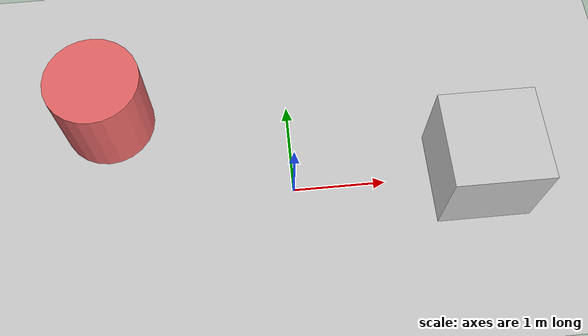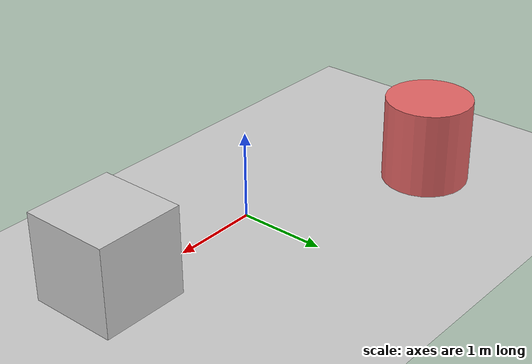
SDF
<?xml version="1.0" ?>
<sdf version="1.6">
  <world name="simple_world">
    <!-- Include ground plane -->
    <include>
      <uri>model://ground_plane</uri>
    </include>

    <!-- Include sun -->
    <include>
      <uri>model://sun</uri>
    </include>

    <!-- Simple box obstacle -->
    <model name="box_obstacle">
      <pose>2 0 0.5 0 0 0</pose>
      <link name="link">
        <collision name="collision">
          <geometry>
            <box>
              <size>1 1 1</size>
            </box>
          </geometry>
        </collision>
        <visual name="visual">
          <geometry>
            <box>
              <size>1 1 1</size>
            </box>
          </geometry>
          <material>
            <ambient>0.5 0.5 0.5 1</ambient>
            <diffuse>0.8 0.8 0.8 1</diffuse>
            <specular>0.1 0.1 0.1 1</specular>
          </material>
        </visual>
        <inertial>
          <mass>1.0</mass>
          <inertia>
            <ixx>0.166667</ixx>
            <ixy>0</ixy>
            <ixz>0</ixz>
            <iyy>0.166667</iyy>
            <iyz>0</iyz>
            <izz>0.166667</izz>
          </inertia>
        </inertial>
      </link>
    </model>

    <!-- Simple cylinder obstacle -->
    <model name="cylinder_obstacle">
      <pose>-2 1 0.5 0 0 0</pose>
      <link name="link">
        <collision name="collision">
          <geometry>
            <cylinder>
              <radius>0.5</radius>
              <length>1.0</length>
            </cylinder>
          </geometry>
        </collision>
        <visual name="visual">
          <geometry>
            <cylinder>
              <radius>0.5</radius>
              <length>1.0</length>
            </cylinder>
          </geometry>
          <material>
            <ambient>0.8 0.3 0.3 1</ambient>
            <diffuse>0.9 0.4 0.4 1</diffuse>
            <specular>0.2 0.2 0.2 1</specular>
          </material>
        </visual>
        <inertial>
          <mass>1.0</mass>
          <inertia>
            <ixx>0.291667</ixx>
            <ixy>0</ixy>
            <ixz>0</ixz>
            <iyy>0.291667</iyy>
            <iyz>0</iyz>
            <izz>0.125</izz>
          </inertia>
        </inertial>
      </link>
    </model>

  </world>
</sdf>
